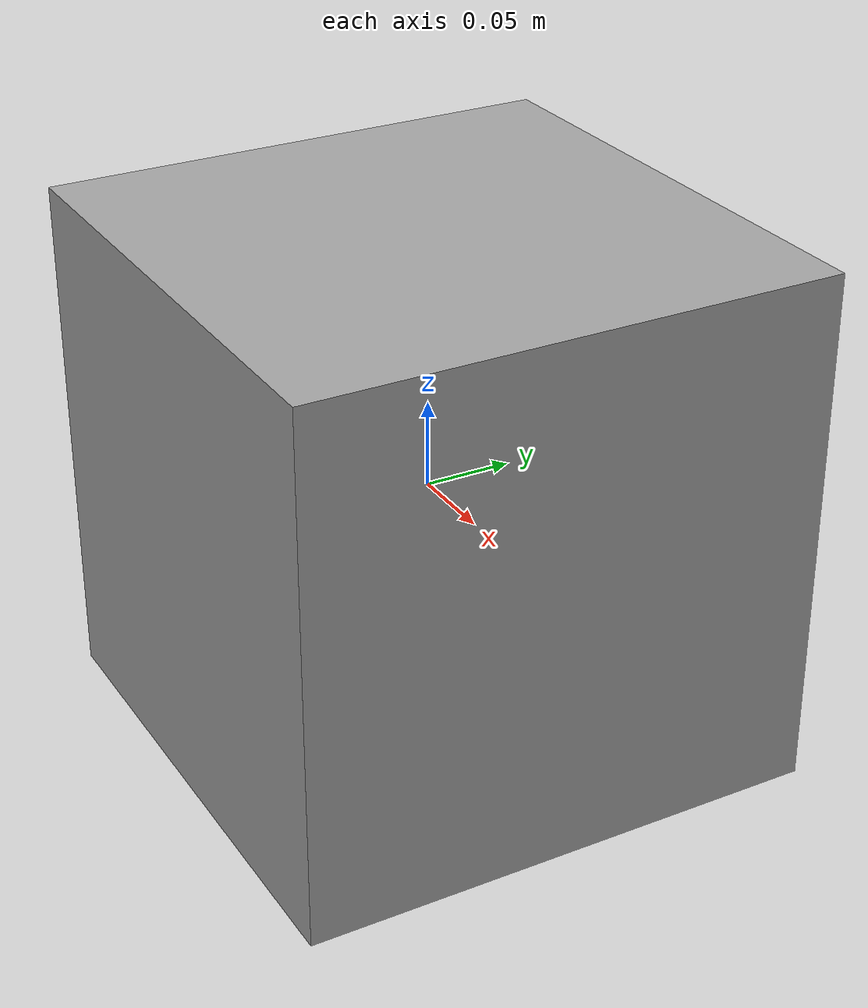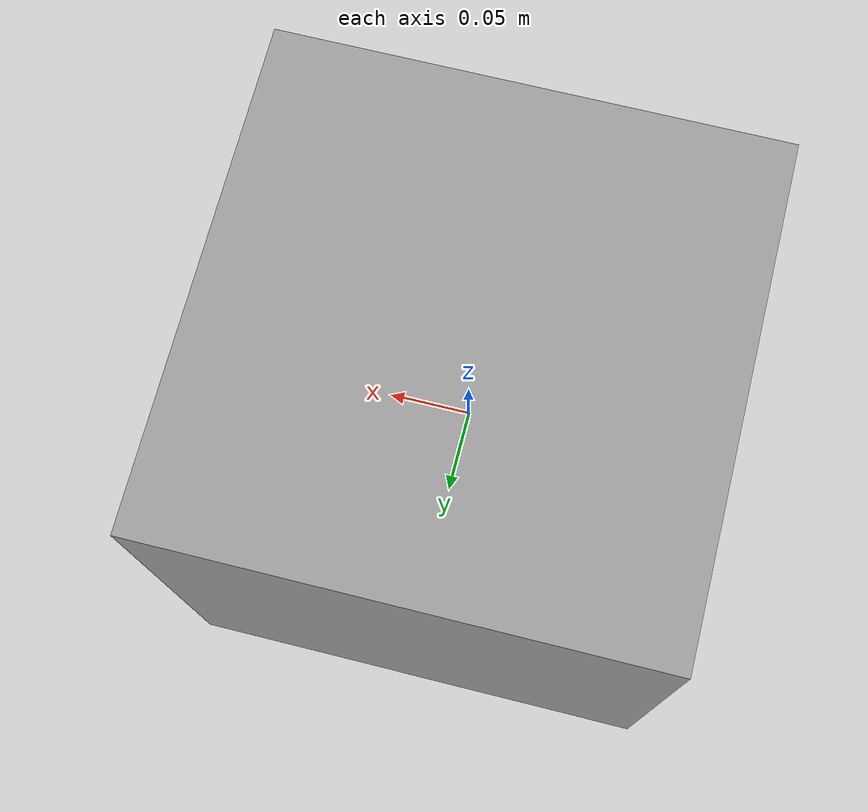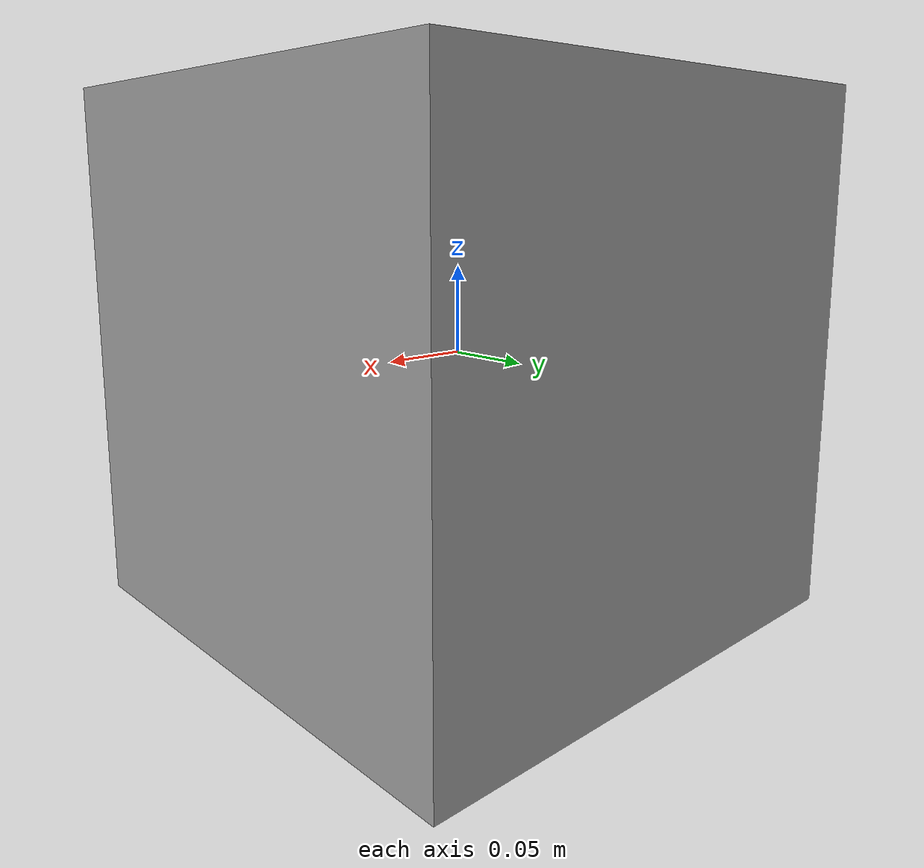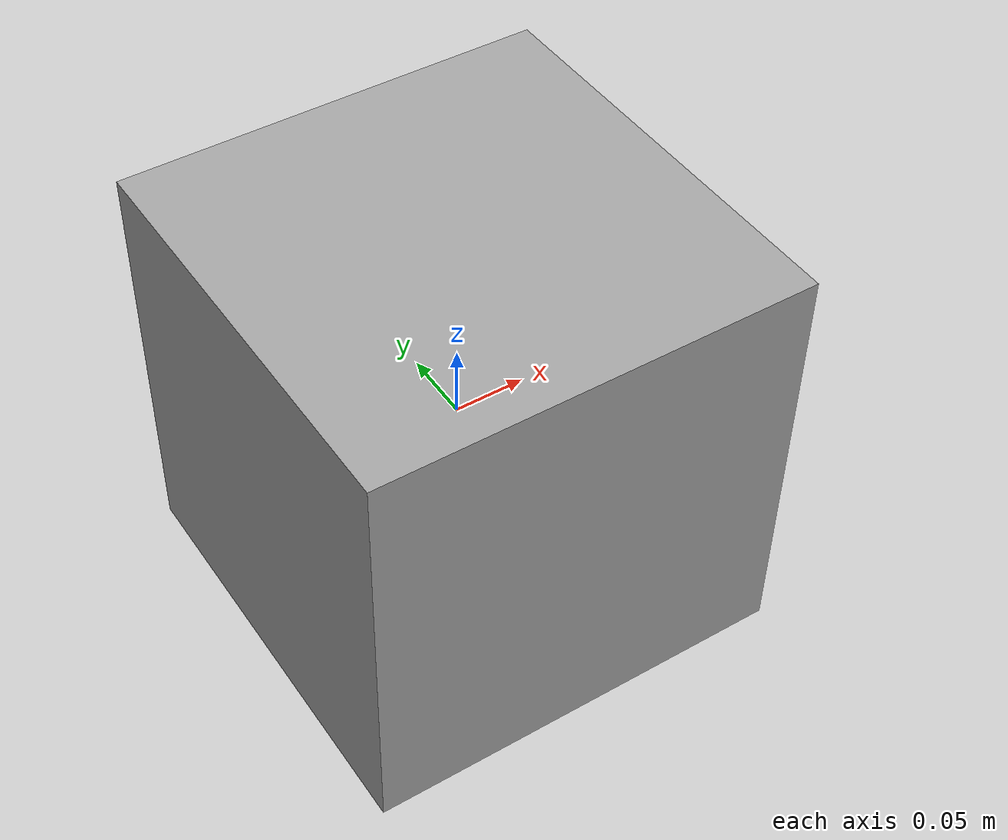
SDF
<?xml version='1.0'?>
<sdf version='1.6'>
  <model name='Yellow_Package'>
    <link name='link'>
      <pose frame=''>0 0 0 0 -0 0</pose>
      <inertial>
        <mass>0.4</mass>
        <inertia>
          <ixx>1</ixx>
          <ixy>0</ixy>
          <ixz>0</ixz>
          <iyy>1</iyy>
          <iyz>0</iyz>
          <izz>1</izz>
        </inertia>
        <pose frame=''>0 0 0 0 -0 0</pose>
      </inertial>
      <self_collide>0</self_collide>
      <kinematic>0</kinematic>
      <gravity>1</gravity>
      <visual name='ModelPreview_1::link::visual_1'>
        <geometry>
          <mesh>
            <uri>model://Yellow_Package/meshes/yellowbox.dae</uri>
          </mesh>
        </geometry>
        <pose frame=''>0 0 0 0 -0 0</pose>
        <cast_shadows>1</cast_shadows>
        <transparency>0</transparency>
        <material>
          <emissive>1 1 0 0</emissive>
          <shader type='vertex'>
            <normal_map>__default__</normal_map>
          </shader>
        </material>
      </visual>
      <visual name='visual'>
        <geometry>
          <mesh>
            <uri>model://Yellow_Package/meshes/yellowbox.dae</uri>
          </mesh>
        </geometry>
        <pose frame=''>0 0 0 0 -0 0</pose>
        <cast_shadows>1</cast_shadows>
        <transparency>0</transparency>
        <material>
          <emissive>1 1 0 0</emissive>
          <shader type='vertex'>
            <normal_map>__default__</normal_map>
          </shader>
        </material>
      </visual>
      <visual name='ModelPreview_1::link::visual_2'>
        <geometry>
          <mesh>
            <uri>model://Yellow_Package/meshes/yellowbox.dae</uri>
          </mesh>
        </geometry>
        <pose frame=''>0 0 0 0 -0 0</pose>
        <cast_shadows>1</cast_shadows>
        <transparency>0</transparency>
        <material>
          <emissive>1 1 0 0</emissive>
          <shader type='vertex'>
            <normal_map>__default__</normal_map>
          </shader>
        </material>
      </visual>
      <collision name='collision'>
        <laser_retro>0</laser_retro>
        <max_contacts>10</max_contacts>
        <pose frame=''>0 0 0 0 -0 0</pose>
        <geometry>
          <box>
            <size>0.3 0.3 0.3</size>
          </box>
        </geometry>
        <surface>
          <friction>
            <ode>
              <mu>1</mu>
              <mu2>1</mu2>
              <fdir1>0 0 0</fdir1>
              <slip1>0</slip1>
              <slip2>0</slip2>
            </ode>
            <torsional>
              <coefficient>1</coefficient>
              <patch_radius>0</patch_radius>
              <surface_radius>0</surface_radius>
              <use_patch_radius>1</use_patch_radius>
              <ode>
                <slip>0</slip>
              </ode>
            </torsional>
          </friction>
          <bounce>
            <restitution_coefficient>0</restitution_coefficient>
            <threshold>1e+06</threshold>
          </bounce>
          <contact>
            <collide_without_contact>0</collide_without_contact>
            <collide_without_contact_bitmask>1</collide_without_contact_bitmask>
            <collide_bitmask>1</collide_bitmask>
            <ode>
              <soft_cfm>0</soft_cfm>
              <soft_erp>0.2</soft_erp>
              <kp>1e+13</kp>
              <kd>1</kd>
              <max_vel>0.1</max_vel>
              <min_depth>0.001</min_depth>
            </ode>
            <bullet>
              <split_impulse>1</split_impulse>
              <split_impulse_penetration_threshold>-0.01</split_impulse_penetration_threshold>
              <soft_cfm>0</soft_cfm>
              <soft_erp>0.2</soft_erp>
              <kp>1e+13</kp>
              <kd>1</kd>
            </bullet>
          </contact>
        </surface>
      </collision>
    </link>
    <static>0</static>
    <allow_auto_disable>1</allow_auto_disable>
  </model>
</sdf>
